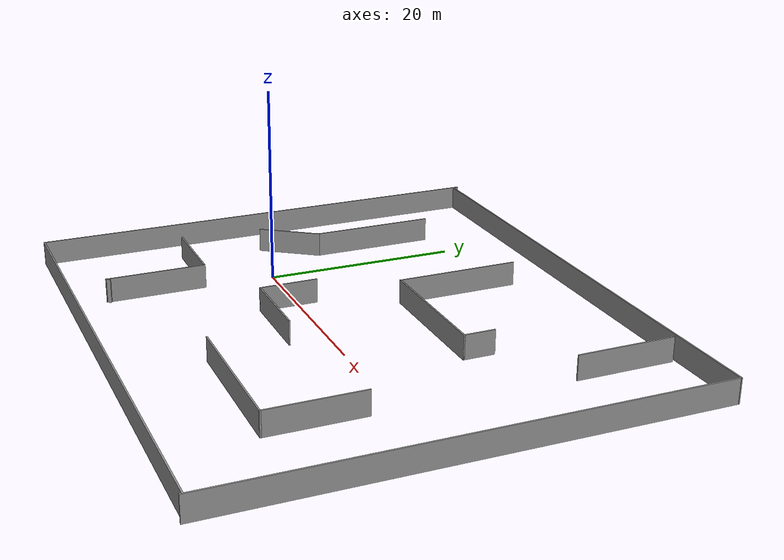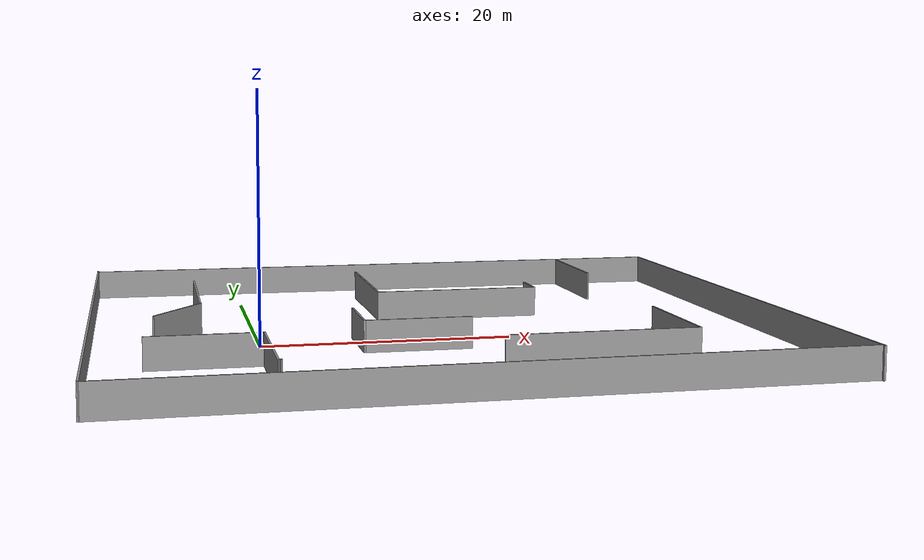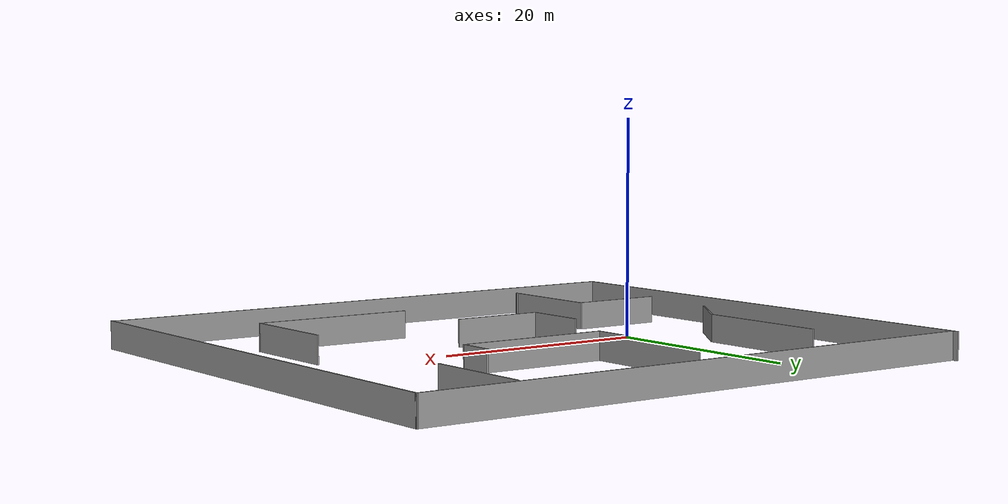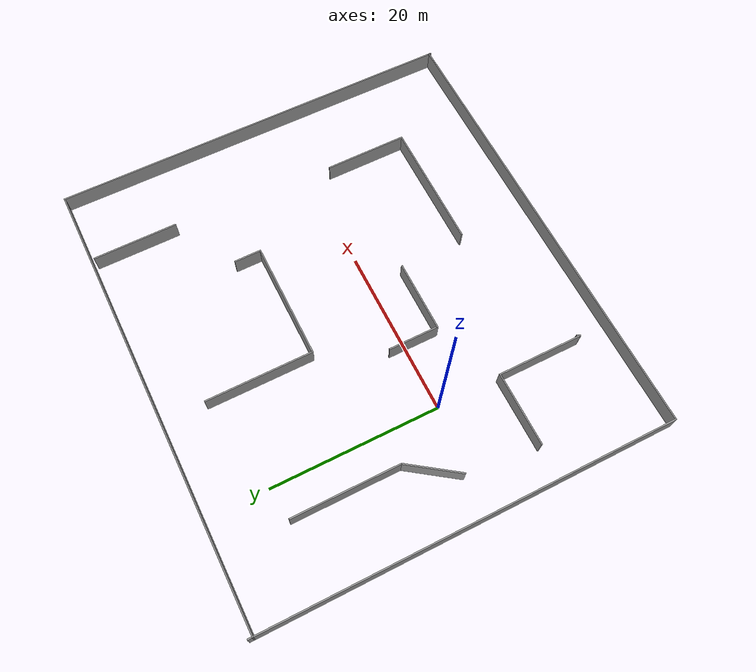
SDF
<?xml version='1.0'?>
<sdf version='1.7'>
  <model name='racer'>
    <pose>14.1892 3.30465 0 0 -0 0</pose>
    <link name='Wall_10'>
      <collision name='Wall_10_Collision'>
        <geometry>
          <box>
            <size>48.57 0.15 2.5</size>
          </box>
        </geometry>
        <pose>0 0 1.25 0 -0 0</pose>
      </collision>
      <visual name='Wall_10_Visual'>
        <pose>0 0 1.25 0 -0 0</pose>
        <geometry>
          <box>
            <size>48.57 0.15 2.5</size>
          </box>
        </geometry>
        <material>
          <script>
            <uri>file://media/materials/scripts/gazebo.material</uri>
            <name>Gazebo/Grey</name>
          </script>
          <ambient>1 1 1 1</ambient>
        </material>
        <meta>
          <layer>0</layer>
        </meta>
      </visual>
      <pose>26.9093 -0.159297 0 0 -0 1.56498</pose>
    </link>
    <link name='Wall_11'>
      <collision name='Wall_11_Collision'>
        <geometry>
          <box>
            <size>54.25 0.15 2.5</size>
          </box>
        </geometry>
        <pose>0 0 1.25 0 -0 0</pose>
      </collision>
      <visual name='Wall_11_Visual'>
        <pose>0 0 1.25 0 -0 0</pose>
        <geometry>
          <box>
            <size>54.25 0.15 2.5</size>
          </box>
        </geometry>
        <material>
          <script>
            <uri>file://media/materials/scripts/gazebo.material</uri>
            <name>Gazebo/Grey</name>
          </script>
          <ambient>1 1 1 1</ambient>
        </material>
        <meta>
          <layer>0</layer>
        </meta>
      </visual>
      <pose>5.5e-05 24.0503 0 0 -0 3.14159</pose>
    </link>
    <link name='Wall_13'>
      <collision name='Wall_13_Collision'>
        <geometry>
          <box>
            <size>12.75 0.15 2.5</size>
          </box>
        </geometry>
        <pose>0 0 1.25 0 -0 0</pose>
      </collision>
      <visual name='Wall_13_Visual'>
        <pose>0 0 1.25 0 -0 0</pose>
        <geometry>
          <box>
            <size>12.75 0.15 2.5</size>
          </box>
        </geometry>
        <material>
          <script>
            <uri>file://media/materials/scripts/gazebo.material</uri>
            <name>Gazebo/Grey</name>
          </script>
          <ambient>1 1 1 1</ambient>
        </material>
        <meta>
          <layer>0</layer>
        </meta>
      </visual>
      <pose>-18.4225 9.86302 0 0 -0 -1.5708</pose>
    </link>
    <link name='Wall_14'>
      <collision name='Wall_14_Collision'>
        <geometry>
          <box>
            <size>6.74885 0.15 2.5</size>
          </box>
        </geometry>
        <pose>0 0 1.25 0 -0 0</pose>
      </collision>
      <visual name='Wall_14_Visual'>
        <pose>0 0 1.25 0 -0 0</pose>
        <geometry>
          <box>
            <size>6.74885 0.15 2.5</size>
          </box>
        </geometry>
        <material>
          <script>
            <uri>file://media/materials/scripts/gazebo.material</uri>
            <name>Gazebo/Grey</name>
          </script>
          <ambient>1 1 1 1</ambient>
        </material>
        <meta>
          <layer>0</layer>
        </meta>
      </visual>
      <pose>-20.3212 0.771585 0 0 -0 -2.18395</pose>
    </link>
    <link name='Wall_16'>
      <collision name='Wall_16_Collision'>
        <geometry>
          <box>
            <size>15 0.15 2.5</size>
          </box>
        </geometry>
        <pose>0 0 1.25 0 -0 0</pose>
      </collision>
      <visual name='Wall_16_Visual'>
        <pose>0 0 1.25 0 -0 0</pose>
        <geometry>
          <box>
            <size>15 0.15 2.5</size>
          </box>
        </geometry>
        <material>
          <script>
            <uri>file://media/materials/scripts/gazebo.material</uri>
            <name>Gazebo/Grey</name>
          </script>
          <ambient>1 1 1 1</ambient>
        </material>
        <meta>
          <layer>0</layer>
        </meta>
      </visual>
      <pose>9.75213 -15.1941 0 0 -0 0</pose>
    </link>
    <link name='Wall_17'>
      <collision name='Wall_17_Collision'>
        <geometry>
          <box>
            <size>9.75 0.15 2.5</size>
          </box>
        </geometry>
        <pose>0 0 1.25 0 -0 0</pose>
      </collision>
      <visual name='Wall_17_Visual'>
        <pose>0 0 1.25 0 -0 0</pose>
        <geometry>
          <box>
            <size>9.75 0.15 2.5</size>
          </box>
        </geometry>
        <material>
          <script>
            <uri>file://media/materials/scripts/gazebo.material</uri>
            <name>Gazebo/Grey</name>
          </script>
          <ambient>1 1 1 1</ambient>
        </material>
        <meta>
          <layer>0</layer>
        </meta>
      </visual>
      <pose>17.1771 -10.3941 0 0 -0 1.5708</pose>
    </link>
    <link name='Wall_19'>
      <collision name='Wall_19_Collision'>
        <geometry>
          <box>
            <size>8.75 0.15 2.5</size>
          </box>
        </geometry>
        <pose>0 0 1.25 0 -0 0</pose>
      </collision>
      <visual name='Wall_19_Visual'>
        <pose>0 0 1.25 0 -0 0</pose>
        <geometry>
          <box>
            <size>8.75 0.15 2.5</size>
          </box>
        </geometry>
        <material>
          <script>
            <uri>file://media/materials/scripts/gazebo.material</uri>
            <name>Gazebo/Grey</name>
          </script>
          <ambient>1 1 1 1</ambient>
        </material>
        <meta>
          <layer>0</layer>
        </meta>
      </visual>
      <pose>-18.7749 -10.5417 0 0 -0 0</pose>
    </link>
    <link name='Wall_20'>
      <collision name='Wall_20_Collision'>
        <geometry>
          <box>
            <size>10.25 0.15 2.5</size>
          </box>
        </geometry>
        <pose>0 0 1.25 0 -0 0</pose>
      </collision>
      <visual name='Wall_20_Visual'>
        <pose>0 0 1.25 0 -0 0</pose>
        <geometry>
          <box>
            <size>10.25 0.15 2.5</size>
          </box>
        </geometry>
        <material>
          <script>
            <uri>file://media/materials/scripts/gazebo.material</uri>
            <name>Gazebo/Grey</name>
          </script>
          <ambient>1 1 1 1</ambient>
        </material>
        <meta>
          <layer>0</layer>
        </meta>
      </visual>
      <pose>-14.4749 -15.5917 0 0 -0 -1.5708</pose>
    </link>
    <link name='Wall_21'>
      <collision name='Wall_21_Collision'>
        <geometry>
          <box>
            <size>0.5 0.15 2.5</size>
          </box>
        </geometry>
        <pose>0 0 1.25 0 -0 0</pose>
      </collision>
      <visual name='Wall_21_Visual'>
        <pose>0 0 1.25 0 -0 0</pose>
        <geometry>
          <box>
            <size>0.5 0.15 2.5</size>
          </box>
        </geometry>
        <material>
          <script>
            <uri>file://media/materials/scripts/gazebo.material</uri>
            <name>Gazebo/Grey</name>
          </script>
          <ambient>1 1 1 1</ambient>
        </material>
        <meta>
          <layer>0</layer>
        </meta>
      </visual>
      <pose>-14.3874 -20.4902 0 0 -0 1.0472</pose>
    </link>
    <link name='Wall_23'>
      <collision name='Wall_23_Collision'>
        <geometry>
          <box>
            <size>12.75 0.15 2.5</size>
          </box>
        </geometry>
        <pose>0 0 1.25 0 -0 0</pose>
      </collision>
      <visual name='Wall_23_Visual'>
        <pose>0 0 1.25 0 -0 0</pose>
        <geometry>
          <box>
            <size>12.75 0.15 2.5</size>
          </box>
        </geometry>
        <material>
          <script>
            <uri>file://media/materials/scripts/gazebo.material</uri>
            <name>Gazebo/Grey</name>
          </script>
          <ambient>1 1 1 1</ambient>
        </material>
        <meta>
          <layer>0</layer>
        </meta>
      </visual>
      <pose>-3.16269 12.6545 0 0 -0 -1.5708</pose>
    </link>
    <link name='Wall_24'>
      <collision name='Wall_24_Collision'>
        <geometry>
          <box>
            <size>14 0.15 2.5</size>
          </box>
        </geometry>
        <pose>0 0 1.25 0 -0 0</pose>
      </collision>
      <visual name='Wall_24_Visual'>
        <pose>0 0 1.25 0 -0 0</pose>
        <geometry>
          <box>
            <size>14 0.15 2.5</size>
          </box>
        </geometry>
        <material>
          <script>
            <uri>file://media/materials/scripts/gazebo.material</uri>
            <name>Gazebo/Grey</name>
          </script>
          <ambient>1 1 1 1</ambient>
        </material>
        <meta>
          <layer>0</layer>
        </meta>
      </visual>
      <pose>3.76231 6.35445 0 0 -0 0</pose>
    </link>
    <link name='Wall_25'>
      <collision name='Wall_25_Collision'>
        <geometry>
          <box>
            <size>3.25 0.15 2.5</size>
          </box>
        </geometry>
        <pose>0 0 1.25 0 -0 0</pose>
      </collision>
      <visual name='Wall_25_Visual'>
        <pose>0 0 1.25 0 -0 0</pose>
        <geometry>
          <box>
            <size>3.25 0.15 2.5</size>
          </box>
        </geometry>
        <material>
          <script>
            <uri>file://media/materials/scripts/gazebo.material</uri>
            <name>Gazebo/Grey</name>
          </script>
          <ambient>1 1 1 1</ambient>
        </material>
        <meta>
          <layer>0</layer>
        </meta>
      </visual>
      <pose>10.6873 7.90445 0 0 -0 1.5708</pose>
    </link>
    <link name='Wall_27'>
      <collision name='Wall_27_Collision'>
        <geometry>
          <box>
            <size>6 0.15 2.5</size>
          </box>
        </geometry>
        <pose>0 0 1.25 0 -0 0</pose>
      </collision>
      <visual name='Wall_27_Visual'>
        <pose>0 0 1.25 0 -0 0</pose>
        <geometry>
          <box>
            <size>6 0.15 2.5</size>
          </box>
        </geometry>
        <material>
          <script>
            <uri>file://media/materials/scripts/gazebo.material</uri>
            <name>Gazebo/Grey</name>
          </script>
          <ambient>1 1 1 1</ambient>
        </material>
        <meta>
          <layer>0</layer>
        </meta>
      </visual>
      <pose>-6.60546 -4.25497 0 0 -0 -1.5708</pose>
    </link>
    <link name='Wall_28'>
      <collision name='Wall_28_Collision'>
        <geometry>
          <box>
            <size>8.5 0.15 2.5</size>
          </box>
        </geometry>
        <pose>0 0 1.25 0 -0 0</pose>
      </collision>
      <visual name='Wall_28_Visual'>
        <pose>0 0 1.25 0 -0 0</pose>
        <geometry>
          <box>
            <size>8.5 0.15 2.5</size>
          </box>
        </geometry>
        <material>
          <script>
            <uri>file://media/materials/scripts/gazebo.material</uri>
            <name>Gazebo/Grey</name>
          </script>
          <ambient>1 1 1 1</ambient>
        </material>
        <meta>
          <layer>0</layer>
        </meta>
      </visual>
      <pose>-2.43046 -7.17997 0 0 -0 0</pose>
    </link>
    <link name='Wall_30'>
      <collision name='Wall_30_Collision'>
        <geometry>
          <box>
            <size>10 0.15 2.5</size>
          </box>
        </geometry>
        <pose>0 0 1.25 0 -0 0</pose>
      </collision>
      <visual name='Wall_30_Visual'>
        <pose>0 0 1.25 0 -0 0</pose>
        <geometry>
          <box>
            <size>10 0.15 2.5</size>
          </box>
        </geometry>
        <material>
          <script>
            <uri>file://media/materials/scripts/gazebo.material</uri>
            <name>Gazebo/Grey</name>
          </script>
          <ambient>1 1 1 1</ambient>
        </material>
        <meta>
          <layer>0</layer>
        </meta>
      </visual>
      <pose>18.1453 18.6818 0 0 -0 -1.5708</pose>
    </link>
    <link name='Wall_6'>
      <collision name='Wall_6_Collision'>
        <geometry>
          <box>
            <size>49.25 0.15 2.5</size>
          </box>
        </geometry>
        <pose>0 0 1.25 0 -0 0</pose>
      </collision>
      <visual name='Wall_6_Visual'>
        <pose>0 0 1.25 0 -0 0</pose>
        <geometry>
          <box>
            <size>49.25 0.15 2.5</size>
          </box>
        </geometry>
        <material>
          <script>
            <uri>file://media/materials/scripts/gazebo.material</uri>
            <name>Gazebo/Grey</name>
          </script>
          <ambient>1 1 1 1</ambient>
        </material>
        <meta>
          <layer>0</layer>
        </meta>
      </visual>
      <pose>-27.0499 0.000273 0 0 -0 -1.5708</pose>
    </link>
    <link name='Wall_9'>
      <collision name='Wall_9_Collision'>
        <geometry>
          <box>
            <size>53.9699 0.15 2.5</size>
          </box>
        </geometry>
        <pose>0 0 1.25 0 -0 0</pose>
      </collision>
      <visual name='Wall_9_Visual'>
        <pose>0 0 1.25 0 -0 0</pose>
        <geometry>
          <box>
            <size>53.9699 0.15 2.5</size>
          </box>
        </geometry>
        <material>
          <script>
            <uri>file://media/materials/scripts/gazebo.material</uri>
            <name>Gazebo/Grey</name>
          </script>
          <ambient>1 1 1 1</ambient>
        </material>
        <meta>
          <layer>0</layer>
        </meta>
      </visual>
      <pose>-0.140714 -24.3517 0 0 -0 0.00736</pose>
    </link>
    <static>1</static>
  </model>
</sdf>
